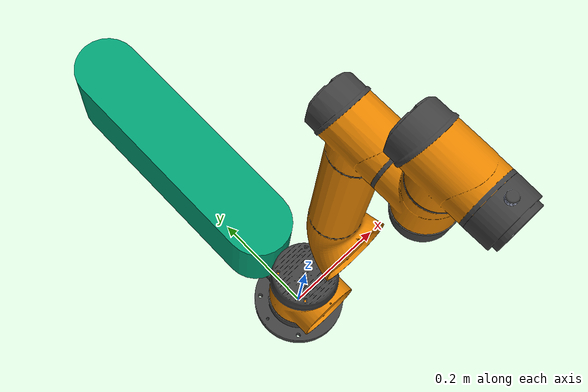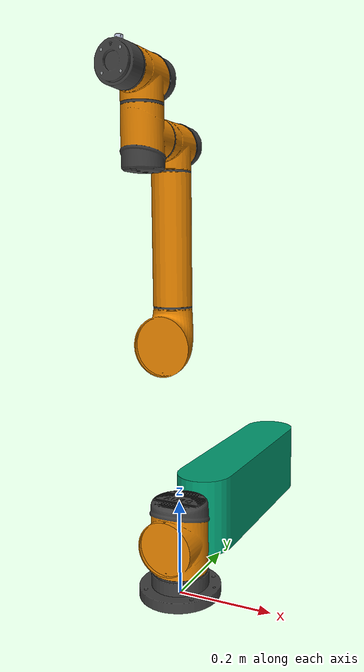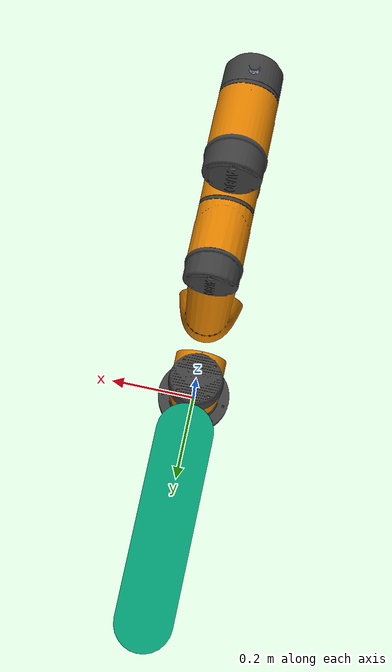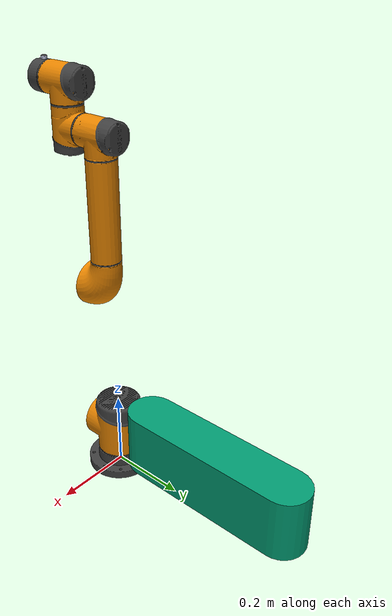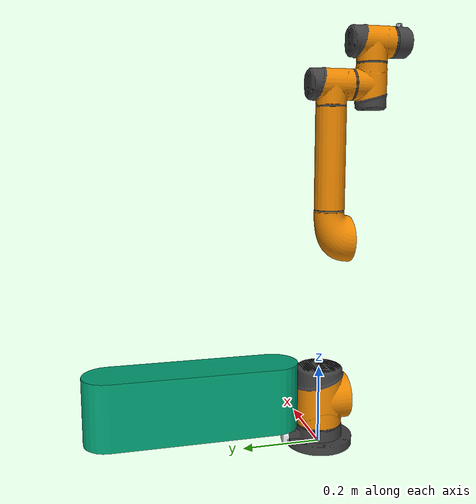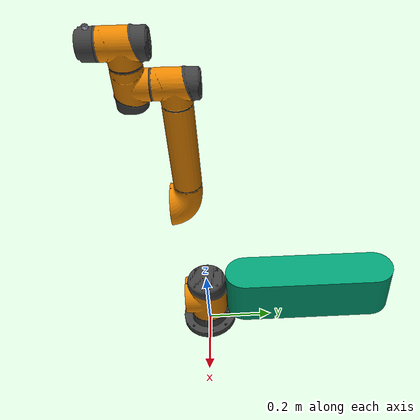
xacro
<?xml version="1.0"?>
<robot name="aubo_i5" xmlns:xacro="http://ros.org/wiki/xacro">
  <!-- parameters -->
  <xacro:arg name="prefix" default=""/>
  <xacro:arg name="robot_ip" default="0.0.0.0"/>
  <xacro:arg name="use_mock_hardware" default="false"/>
  <xacro:arg name="mock_sensor_commands" default="false"/>

  <!-- import macro -->
  <xacro:include filename="$(find aubo_i5_description)/urdf/aubo_i5_macro.xacro" />
  <xacro:include filename="$(find aubo_driver)/urdf/aubo.ros2_control.xacro" />

  <!-- Aubo i5 URDF -->
  <xacro:aubo_i5
    prefix="$(arg prefix)"
    parent="world"
  >
    <origin xyz="0 0 0" rpy="0 0 0" />
  </xacro:aubo_i5>

  <!-- Aubo i5 ROS2 Control -->
  <xacro:aubo_ros2_control
    name="aubo_i5"
    prefix="$(arg prefix)"
    robot_ip="$(arg robot_ip)"
    use_mock_hardware="$(arg use_mock_hardware)"
    mock_sensor_commands="$(arg mock_sensor_commands)"
  />

  <!-- world root link -->
  <link name="world" />
</robot>

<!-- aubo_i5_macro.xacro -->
<robot name="aubo_i5_macro" xmlns:xacro="http://www.ros.org/wiki/xacro">
  <xacro:macro name="aubo_i5"
    params="
    prefix
    parent
    *origin"
  >
    <!-- parameters -->
    <xacro:property name="lower_limit" value="-3.04" />
    <xacro:property name="upper_limit" value="3.04" />
    <xacro:property name="max_velocity" value="3.1" />
    <xacro:property name="max_effort_1" value="300.0" />
    <xacro:property name="max_effort_2" value="50.0" />

    <!-- Define all the Links -->

    <link name="${prefix}aubo_i5_base_link">
      <inertial>
        <origin xyz="5.280333978763784e-09 0.0015966894220128586 0.016570455971104445" rpy="0 0 0" />
        <mass value="1.4382166298722134" />
        <inertia ixx="0.003103" iyy="0.002858" izz="0.005531" ixy="-0.0" iyz="-4.9e-05" ixz="-0.0" />
      </inertial>
      <visual>
        <origin xyz="0 0 0" rpy="${-pi/2} 0 0" />
        <geometry>
          <mesh filename="package://aubo_i5_description/meshes/visual/base_link.dae"
            scale="0.001 0.001 0.001" />
        </geometry>
      </visual>
      <collision>
        <origin xyz="0 0 0" rpy="0 0 0" />
        <geometry>
          <mesh filename="package://aubo_i5_description/meshes/collision/base_link.stl"
            scale="0.001 0.001 0.001" />
        </geometry>
      </collision>
    </link>

    <link name="${prefix}shoulder_link">
      <inertial>
        <origin xyz="-4.185040550529615e-07 -0.00538388048820414 0.06988520317439471" rpy="0 0 0" />
        <mass value="3.9977368906576385" />
        <inertia ixx="0.010612" iyy="0.010271" izz="0.007824" ixy="-0.0" iyz="0.000382" ixz="0.0" />
      </inertial>
      <visual>
        <origin xyz="0.0 -0.0 -0.0435" rpy="${-pi/2} 0 0" />
        <geometry>
          <mesh filename="package://aubo_i5_description/meshes/visual/shoulder_link.dae"
            scale="0.001 0.001 0.001" />
        </geometry>
      </visual>
      <collision>
        <origin xyz="0.0 -0.0 -0.0435" rpy="0 0 0" />
        <geometry>
          <mesh filename="package://aubo_i5_description/meshes/collision/shoulder_link.stl"
            scale="0.001 0.001 0.001" />
        </geometry>
      </collision>
    </link>

    <link name="${prefix}upper_arm_link">
      <inertial>
        <origin xyz="4.5155821807648865e-10 -0.0717893986201179 0.20400016275508465" rpy="0 0 0" />
        <mass value="10.264360778757078" />
        <inertia ixx="0.367413" iyy="0.361705" izz="0.024156" ixy="-0.0" iyz="-0.0" ixz="1e-06" />
      </inertial>
      <visual>
        <origin xyz="0.0 0.062 -0.122" rpy="${-pi/2} 0 0" />
        <geometry>
          <mesh filename="package://aubo_i5_description/meshes/visual/upper_arm_link.dae"
            scale="0.001 0.001 0.001" />
        </geometry>
      </visual>
      <collision>
        <origin xyz="0.0 0.062 -0.122" rpy="0 0 0" />
        <geometry>
          <mesh filename="package://aubo_i5_description/meshes/collision/upper_arm_link.stl"
            scale="0.001 0.001 0.001" />
        </geometry>
      </collision>
    </link>

    <link name="${prefix}forearm_link">
      <inertial>
        <origin xyz="-8.598904331136158e-08 0.03777959596600701 0.18625691250689058" rpy="0 0 0" />
        <mass value="5.717058820664718" />
        <inertia ixx="0.110129" iyy="0.109705" izz="0.005171" ixy="-0.0" iyz="-0.000971" ixz="0.0" />
      </inertial>
      <visual>
        <origin xyz="0.0 0.062 -0.53" rpy="${-pi/2} 0 0" />
        <geometry>
          <mesh filename="package://aubo_i5_description/meshes/visual/forearm_link.dae"
            scale="0.001 0.001 0.001" />
        </geometry>
      </visual>
      <collision>
        <origin xyz="0.0 0.062 -0.53" rpy="0 0 0" />
        <geometry>
          <mesh filename="package://aubo_i5_description/meshes/collision/forearm_link.stl"
            scale="0.001 0.001 0.001" />
        </geometry>
      </collision>
    </link>

    <link name="${prefix}wrist_1_link">
      <inertial>
        <origin xyz="4.043690373112674e-07 -0.03781762705264109 0.010378004019249931" rpy="0 0 0" />
        <mass value="1.1959791801557391" />
        <inertia ixx="0.001481" iyy="0.001416" izz="0.000986" ixy="0.0" iyz="7.9e-05" ixz="0.0" />
      </inertial>
      <visual>
        <origin xyz="0.0 0.0795 -0.906" rpy="${-pi/2} 0 0" />
        <geometry>
          <mesh filename="package://aubo_i5_description/meshes/visual/wrist_1_link.dae"
            scale="0.001 0.001 0.001" />
        </geometry>
      </visual>
      <collision>
        <origin xyz="0.0 0.0795 -0.906" rpy="0 0 0" />
        <geometry>
          <mesh filename="package://aubo_i5_description/meshes/collision/wrist_1_link.stl"
            scale="0.001 0.001 0.001" />
        </geometry>
      </collision>
    </link>

    <link name="${prefix}wrist_2_link">
      <inertial>
        <origin xyz="-3.835911159071275e-07 -0.010378293494720053 0.03781729945949308" rpy="0 0 0" />
        <mass value="1.195979134054204" />
        <inertia ixx="0.001481" iyy="0.000986" izz="0.001416" ixy="0.0" iyz="7.9e-05" ixz="0.0" />
      </inertial>
      <visual>
        <origin xyz="0.0 0.1215 -0.96656" rpy="${-pi/2} 0 0" />
        <geometry>
          <mesh filename="package://aubo_i5_description/meshes/visual/wrist_2_link.dae"
            scale="0.001 0.001 0.001" />
        </geometry>
      </visual>
      <collision>
        <origin xyz="0.0 0.1215 -0.96656" rpy="0 0 0" />
        <geometry>
          <mesh filename="package://aubo_i5_description/meshes/collision/wrist_2_link.stl"
            scale="0.001 0.001 0.001" />
        </geometry>
      </collision>
    </link>

    <link name="${prefix}wrist_3_link">
      <inertial>
        <origin xyz="4.15409377624965e-09 -0.01855349466746148 0.0003522591384534923" rpy="0 0 0" />
        <mass value="0.19247764025253766" />
        <inertia ixx="0.000104" iyy="0.000169" izz="0.000101" ixy="0.0" iyz="-1e-06" ixz="-0.0" />
      </inertial>
      <visual>
        <origin xyz="0.0 0.18206 -1.00856" rpy="${-pi/2} 0 0" />
        <geometry>
          <mesh filename="package://aubo_i5_description/meshes/visual/wrist_3_link.dae"
            scale="0.001 0.001 0.001" />
        </geometry>
      </visual>
      <collision>
        <origin xyz="0.0 0.18206 -1.00856" rpy="0 0 0" />
        <geometry>
          <mesh filename="package://aubo_i5_description/meshes/collision/wrist_3_link.stl"
            scale="0.001 0.001 0.001" />
        </geometry>
      </collision>
    </link>

    <link name="${prefix}tool0_link"/>

    <!-- Define all the Joints -->

    <joint name="${prefix}base_joint" type="fixed">
      <parent link="${parent}" />
      <child link="${prefix}aubo_i5_base_link" />
      <xacro:insert_block name="origin" />
    </joint>

    <joint name="${prefix}shoulder_pan_joint" type="revolute">
      <origin xyz="0.0 0.0 0.0435" rpy="0 0 0" />
      <parent link="${prefix}aubo_i5_base_link" />
      <child link="${prefix}shoulder_link" />
      <axis xyz="-0.0 0.0 1.0" />
      <limit lower="${lower_limit}" upper="${upper_limit}" velocity="${max_velocity}"
        effort="${max_effort_1}" />
    </joint>

    <joint name="${prefix}shoulder_lift_joint" type="revolute">
      <origin xyz="0.0 -0.062 0.0785" rpy="0 0 0" />
      <parent link="${prefix}shoulder_link" />
      <child link="${prefix}upper_arm_link" />
      <axis xyz="-0.0 -1.0 0.0" />
      <limit lower="${lower_limit}" upper="${upper_limit}" velocity="${max_velocity}"
        effort="${max_effort_1}" />
    </joint>

    <joint name="${prefix}elbow_joint" type="revolute">
      <origin xyz="0.0 0.0 0.408" rpy="0 0 0" />
      <parent link="${prefix}upper_arm_link" />
      <child link="${prefix}forearm_link" />
      <axis xyz="-0.0 1.0 -0.0" />
      <limit lower="${lower_limit}" upper="${upper_limit}" velocity="${max_velocity}"
        effort="${max_effort_1}" />
    </joint>

    <joint name="${prefix}wrist_1_joint" type="revolute">
      <origin xyz="0.0 -0.0175 0.376" rpy="0 0 0" />
      <parent link="${prefix}forearm_link" />
      <child link="${prefix}wrist_1_link" />
      <axis xyz="-0.0 -1.0 0.0" />
      <limit lower="${lower_limit}" upper="${upper_limit}" velocity="${max_velocity}"
        effort="${max_effort_2}" />
    </joint>

    <joint name="${prefix}wrist_2_joint" type="revolute">
      <origin xyz="0.0 -0.042 0.06056" rpy="0 0 0" />
      <parent link="${prefix}wrist_1_link" />
      <child link="${prefix}wrist_2_link" />
      <axis xyz="-0.0 0.0 1.0" />
      <limit lower="${lower_limit}" upper="${upper_limit}" velocity="${max_velocity}"
        effort="${max_effort_2}" />
    </joint>

    <joint name="${prefix}wrist_3_joint" type="revolute">
      <origin xyz="0.0 -0.06056 0.042" rpy="0 0 0" />
      <parent link="${prefix}wrist_2_link" />
      <child link="${prefix}wrist_3_link" />
      <axis xyz="-0.0 -1.0 0.0" />
      <limit lower="${lower_limit}" upper="${upper_limit}" velocity="${max_velocity}"
        effort="${max_effort_2}" />
    </joint>

    <joint name="${prefix}tool0_joint" type="fixed">
      <parent link="${prefix}wrist_3_link" />
      <child link="${prefix}tool0_link" />
      <origin xyz="0.0 -0.0335 0.0" rpy="${pi/2} 0 0" />
    </joint>

  </xacro:macro>

</robot>
